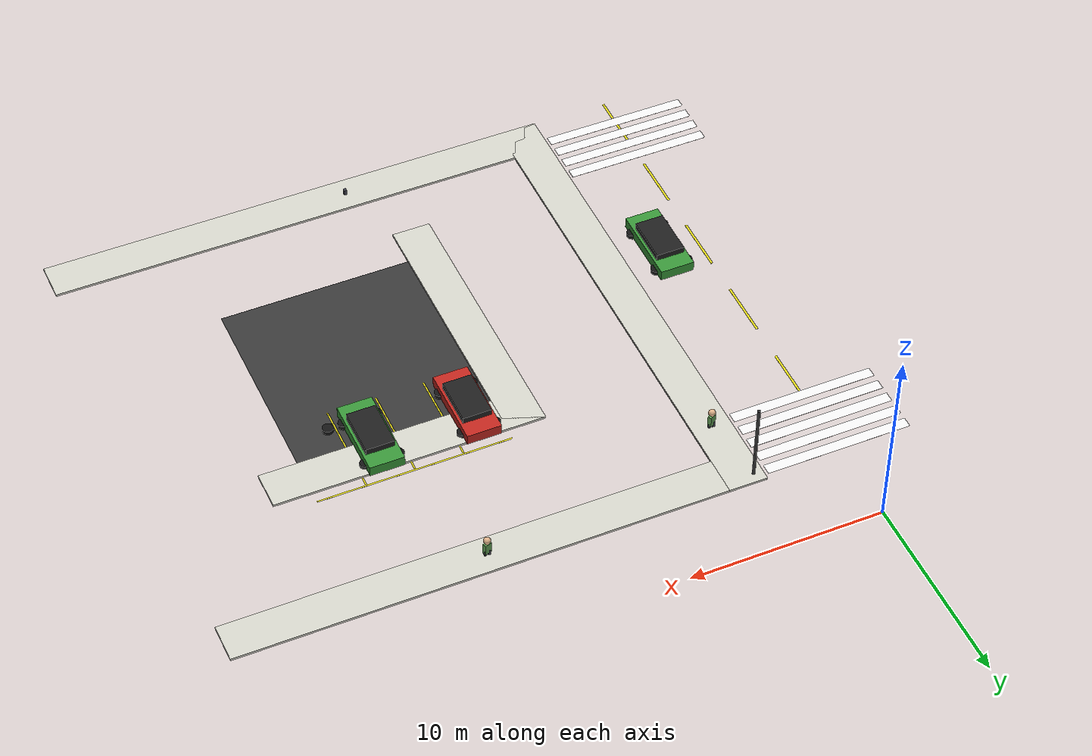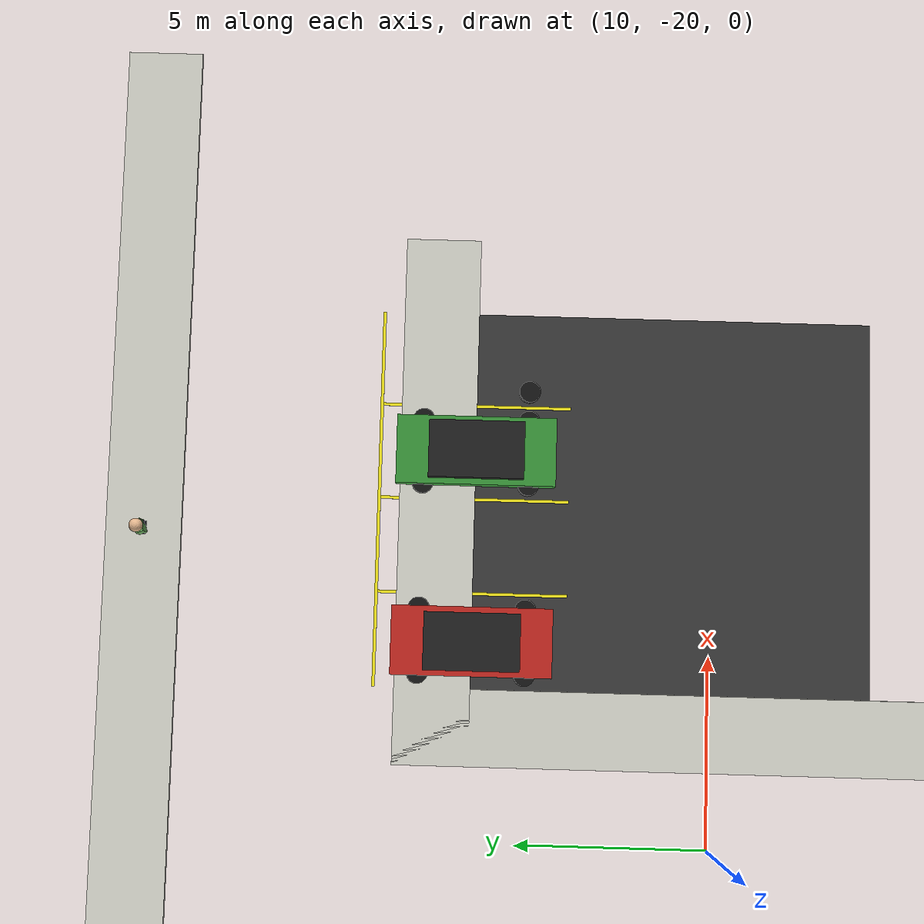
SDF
<sdf version="1.9">
 <world name="city">
  <model name="sw_v_21">
   <static>true</static>
   <pose>5.0 -17.5 0.065 0 0 0</pose>
   <link name="l">
    <collision name="c"><geometry><box><size>2.0 27.0 0.12</size></box></geometry></collision>
    <visual name="v">
     <geometry><box><size>2.0 27.0 0.12</size></box></geometry>
     <material>
      <ambient>0.82 0.82 0.78 1</ambient>
      <diffuse>0.82 0.82 0.78 1</diffuse>
      <specular>0.04 0.04 0.04 1</specular>
     </material>
    </visual>
   </link>
  </model>
  <model name="sw_h_38">
   <static>true</static>
   <pose>17.5 -30.0 0.065 0 0 0</pose>
   <link name="l">
    <collision name="c"><geometry><box><size>27.0 2.0 0.12</size></box></geometry></collision>
    <visual name="v">
     <geometry><box><size>27.0 2.0 0.12</size></box></geometry>
     <material>
      <ambient>0.82 0.82 0.78 1</ambient>
      <diffuse>0.82 0.82 0.78 1</diffuse>
      <specular>0.04 0.04 0.04 1</specular>
     </material>
    </visual>
   </link>
  </model>
  <model name="sw_h_42">
   <static>true</static>
   <pose>17.5 -5.0 0.065 0 0 0</pose>
   <link name="l">
    <collision name="c"><geometry><box><size>27.0 2.0 0.12</size></box></geometry></collision>
    <visual name="v">
     <geometry><box><size>27.0 2.0 0.12</size></box></geometry>
     <material>
      <ambient>0.82 0.82 0.78 1</ambient>
      <diffuse>0.82 0.82 0.78 1</diffuse>
      <specular>0.04 0.04 0.04 1</specular>
     </material>
    </visual>
   </link>
  </model>
  <model name="sw_corner_74">
   <static>true</static>
   <pose>5.0 -5.0 0.065 0 0 0</pose>
   <link name="l">
    <collision name="c"><geometry><box><size>2.0 2.0 0.12</size></box></geometry></collision>
    <visual name="v">
     <geometry><box><size>2.0 2.0 0.12</size></box></geometry>
     <material>
      <ambient>0.82 0.82 0.78 1</ambient>
      <diffuse>0.82 0.82 0.78 1</diffuse>
      <specular>0.04 0.04 0.04 1</specular>
     </material>
    </visual>
   </link>
  </model>
  <model name="cw_n_157">
   <static>true</static>
   <pose>0.0 -29.525 0.013000000000000001 0 0 0</pose>
   <link name="l">
    <visual name="v">
     <geometry><box><size>7.6 0.55 0.005</size></box></geometry>
     <material>
      <ambient>0.94 0.94 0.94 1</ambient>
      <diffuse>0.94 0.94 0.94 1</diffuse>
      <specular>0.04 0.04 0.04 1</specular>
     </material>
    </visual>
   </link>
  </model>
  <model name="cw_n_161">
   <static>true</static>
   <pose>0.0 -28.625 0.013000000000000001 0 0 0</pose>
   <link name="l">
    <visual name="v">
     <geometry><box><size>7.6 0.55 0.005</size></box></geometry>
     <material>
      <ambient>0.94 0.94 0.94 1</ambient>
      <diffuse>0.94 0.94 0.94 1</diffuse>
      <specular>0.04 0.04 0.04 1</specular>
     </material>
    </visual>
   </link>
  </model>
  <model name="cw_n_165">
   <static>true</static>
   <pose>0.0 -27.725 0.013000000000000001 0 0 0</pose>
   <link name="l">
    <visual name="v">
     <geometry><box><size>7.6 0.55 0.005</size></box></geometry>
     <material>
      <ambient>0.94 0.94 0.94 1</ambient>
      <diffuse>0.94 0.94 0.94 1</diffuse>
      <specular>0.04 0.04 0.04 1</specular>
     </material>
    </visual>
   </link>
  </model>
  <model name="cw_n_169">
   <static>true</static>
   <pose>0.0 -26.825 0.013000000000000001 0 0 0</pose>
   <link name="l">
    <visual name="v">
     <geometry><box><size>7.6 0.55 0.005</size></box></geometry>
     <material>
      <ambient>0.94 0.94 0.94 1</ambient>
      <diffuse>0.94 0.94 0.94 1</diffuse>
      <specular>0.04 0.04 0.04 1</specular>
     </material>
    </visual>
   </link>
  </model>
  <model name="cw_s_172">
   <static>true</static>
   <pose>0.0 -4.575 0.013000000000000001 0 0 0</pose>
   <link name="l">
    <visual name="v">
     <geometry><box><size>7.6 0.55 0.005</size></box></geometry>
     <material>
      <ambient>0.94 0.94 0.94 1</ambient>
      <diffuse>0.94 0.94 0.94 1</diffuse>
      <specular>0.04 0.04 0.04 1</specular>
     </material>
    </visual>
   </link>
  </model>
  <model name="cw_s_176">
   <static>true</static>
   <pose>0.0 -5.475 0.013000000000000001 0 0 0</pose>
   <link name="l">
    <visual name="v">
     <geometry><box><size>7.6 0.55 0.005</size></box></geometry>
     <material>
      <ambient>0.94 0.94 0.94 1</ambient>
      <diffuse>0.94 0.94 0.94 1</diffuse>
      <specular>0.04 0.04 0.04 1</specular>
     </material>
    </visual>
   </link>
  </model>
  <model name="cw_s_180">
   <static>true</static>
   <pose>0.0 -6.375 0.013000000000000001 0 0 0</pose>
   <link name="l">
    <visual name="v">
     <geometry><box><size>7.6 0.55 0.005</size></box></geometry>
     <material>
      <ambient>0.94 0.94 0.94 1</ambient>
      <diffuse>0.94 0.94 0.94 1</diffuse>
      <specular>0.04 0.04 0.04 1</specular>
     </material>
    </visual>
   </link>
  </model>
  <model name="cw_s_184">
   <static>true</static>
   <pose>0.0 -7.275 0.013000000000000001 0 0 0</pose>
   <link name="l">
    <visual name="v">
     <geometry><box><size>7.6 0.55 0.005</size></box></geometry>
     <material>
      <ambient>0.94 0.94 0.94 1</ambient>
      <diffuse>0.94 0.94 0.94 1</diffuse>
      <specular>0.04 0.04 0.04 1</specular>
     </material>
    </visual>
   </link>
  </model>
  <model name="cw_s_188">
   <static>true</static>
   <pose>0.0 -8.175 0.013000000000000001 0 0 0</pose>
   <link name="l">
    <visual name="v">
     <geometry><box><size>7.6 0.55 0.005</size></box></geometry>
     <material>
      <ambient>0.94 0.94 0.94 1</ambient>
      <diffuse>0.94 0.94 0.94 1</diffuse>
      <specular>0.04 0.04 0.04 1</specular>
     </material>
    </visual>
   </link>
  </model>
  <model name="dash_300">
   <static>true</static>
   <pose>0.0 -29.5 0.012 0 0 0</pose>
   <link name="l">
    <visual name="v">
     <geometry><box><size>0.12 3.0 0.003</size></box></geometry>
     <material>
      <ambient>0.95 0.9 0.1 1</ambient>
      <diffuse>0.95 0.9 0.1 1</diffuse>
      <specular>0.04 0.04 0.04 1</specular>
     </material>
    </visual>
   </link>
  </model>
  <model name="dash_301">
   <static>true</static>
   <pose>0.0 -24.5 0.012 0 0 0</pose>
   <link name="l">
    <visual name="v">
     <geometry><box><size>0.12 3.0 0.003</size></box></geometry>
     <material>
      <ambient>0.95 0.9 0.1 1</ambient>
      <diffuse>0.95 0.9 0.1 1</diffuse>
      <specular>0.04 0.04 0.04 1</specular>
     </material>
    </visual>
   </link>
  </model>
  <model name="dash_302">
   <static>true</static>
   <pose>0.0 -19.5 0.012 0 0 0</pose>
   <link name="l">
    <visual name="v">
     <geometry><box><size>0.12 3.0 0.003</size></box></geometry>
     <material>
      <ambient>0.95 0.9 0.1 1</ambient>
      <diffuse>0.95 0.9 0.1 1</diffuse>
      <specular>0.04 0.04 0.04 1</specular>
     </material>
    </visual>
   </link>
  </model>
  <model name="dash_303">
   <static>true</static>
   <pose>0.0 -14.5 0.012 0 0 0</pose>
   <link name="l">
    <visual name="v">
     <geometry><box><size>0.12 3.0 0.003</size></box></geometry>
     <material>
      <ambient>0.95 0.9 0.1 1</ambient>
      <diffuse>0.95 0.9 0.1 1</diffuse>
      <specular>0.04 0.04 0.04 1</specular>
     </material>
    </visual>
   </link>
  </model>
  <model name="dash_304">
   <static>true</static>
   <pose>0.0 -9.5 0.012 0 0 0</pose>
   <link name="l">
    <visual name="v">
     <geometry><box><size>0.12 3.0 0.003</size></box></geometry>
     <material>
      <ambient>0.95 0.9 0.1 1</ambient>
      <diffuse>0.95 0.9 0.1 1</diffuse>
      <specular>0.04 0.04 0.04 1</specular>
     </material>
    </visual>
   </link>
  </model>
  <model name="lot2_slab_431">
   <static>true</static>
   <pose>19.0 -19.0 0.008 0 0 0</pose>
   <link name="l">
    <collision name="c"><geometry><box><size>10.0 10.5 0.005</size></box></geometry></collision>
    <visual name="v">
     <geometry><box><size>10.0 10.5 0.005</size></box></geometry>
     <material>
      <ambient>0.22 0.22 0.22 1</ambient>
      <diffuse>0.22 0.22 0.22 1</diffuse>
      <specular>0.04 0.04 0.04 1</specular>
     </material>
    </visual>
   </link>
  </model>
  <model name="lot2_ln_432">
   <static>true</static>
   <pose>16.5 -13.75 0.012 0 0 0</pose>
   <link name="l">
    <visual name="v">
     <geometry><box><size>0.08 5.0 0.003</size></box></geometry>
     <material>
      <ambient>0.95 0.9 0.1 1</ambient>
      <diffuse>0.95 0.9 0.1 1</diffuse>
      <specular>0.04 0.04 0.04 1</specular>
     </material>
    </visual>
   </link>
  </model>
  <model name="lot2_ln_433">
   <static>true</static>
   <pose>19.0 -13.75 0.012 0 0 0</pose>
   <link name="l">
    <visual name="v">
     <geometry><box><size>0.08 5.0 0.003</size></box></geometry>
     <material>
      <ambient>0.95 0.9 0.1 1</ambient>
      <diffuse>0.95 0.9 0.1 1</diffuse>
      <specular>0.04 0.04 0.04 1</specular>
     </material>
    </visual>
   </link>
  </model>
  <model name="lot2_ln_434">
   <static>true</static>
   <pose>21.5 -13.75 0.012 0 0 0</pose>
   <link name="l">
    <visual name="v">
     <geometry><box><size>0.08 5.0 0.003</size></box></geometry>
     <material>
      <ambient>0.95 0.9 0.1 1</ambient>
      <diffuse>0.95 0.9 0.1 1</diffuse>
      <specular>0.04 0.04 0.04 1</specular>
     </material>
    </visual>
   </link>
  </model>
  <model name="lot2_back_435">
   <static>true</static>
   <pose>19.0 -11.21 0.012 0 0 0</pose>
   <link name="l">
    <visual name="v">
     <geometry><box><size>10.0 0.08 0.003</size></box></geometry>
     <material>
      <ambient>0.95 0.9 0.1 1</ambient>
      <diffuse>0.95 0.9 0.1 1</diffuse>
      <specular>0.04 0.04 0.04 1</specular>
     </material>
    </visual>
   </link>
  </model>
  <model name="lot2_car0_b_436">
   <static>true</static>
   <pose>15.25 -13.75 0.358 0 0 0</pose>
   <link name="l">
    <collision name="c"><geometry><box><size>1.8 4.2 0.55</size></box></geometry></collision>
    <visual name="v">
     <geometry><box><size>1.8 4.2 0.55</size></box></geometry>
     <material>
      <ambient>0.75 0.15 0.12 1</ambient>
      <diffuse>0.75 0.15 0.12 1</diffuse>
      <specular>0.04 0.04 0.04 1</specular>
     </material>
    </visual>
   </link>
  </model>
  <model name="lot2_car0_r_437">
   <static>true</static>
   <pose>15.25 -13.75 0.778 0 0 0</pose>
   <link name="l">
    <collision name="c"><geometry><box><size>1.5 2.5 0.38</size></box></geometry></collision>
    <visual name="v">
     <geometry><box><size>1.5 2.5 0.38</size></box></geometry>
     <material>
      <ambient>0.12 0.12 0.12 1</ambient>
      <diffuse>0.12 0.12 0.12 1</diffuse>
      <specular>0.04 0.04 0.04 1</specular>
     </material>
    </visual>
   </link>
  </model>
  <model name="lot2_car0_w_438">
   <static>true</static>
   <pose>14.4 -15.15 0.158 0 0 1.5708</pose>
   <link name="l">
    <visual name="v">
     <geometry><cylinder><radius>0.28</radius><length>0.22</length></cylinder></geometry>
     <material><ambient>0.08 0.08 0.08 1</ambient><diffuse>0.08 0.08 0.08 1</diffuse></material>
    </visual>
   </link>
  </model>
  <model name="lot2_car0_w_439">
   <static>true</static>
   <pose>16.1 -15.15 0.158 0 0 1.5708</pose>
   <link name="l">
    <visual name="v">
     <geometry><cylinder><radius>0.28</radius><length>0.22</length></cylinder></geometry>
     <material><ambient>0.08 0.08 0.08 1</ambient><diffuse>0.08 0.08 0.08 1</diffuse></material>
    </visual>
   </link>
  </model>
  <model name="lot2_car0_w_440">
   <static>true</static>
   <pose>14.4 -12.35 0.158 0 0 1.5708</pose>
   <link name="l">
    <visual name="v">
     <geometry><cylinder><radius>0.28</radius><length>0.22</length></cylinder></geometry>
     <material><ambient>0.08 0.08 0.08 1</ambient><diffuse>0.08 0.08 0.08 1</diffuse></material>
    </visual>
   </link>
  </model>
  <model name="lot2_car0_w_441">
   <static>true</static>
   <pose>16.1 -12.35 0.158 0 0 1.5708</pose>
   <link name="l">
    <visual name="v">
     <geometry><cylinder><radius>0.28</radius><length>0.22</length></cylinder></geometry>
     <material><ambient>0.08 0.08 0.08 1</ambient><diffuse>0.08 0.08 0.08 1</diffuse></material>
    </visual>
   </link>
  </model>
  <model name="lot2_car2_b_442">
   <static>true</static>
   <pose>20.25 -13.75 0.358 0 0 0</pose>
   <link name="l">
    <collision name="c"><geometry><box><size>1.8 4.2 0.55</size></box></geometry></collision>
    <visual name="v">
     <geometry><box><size>1.8 4.2 0.55</size></box></geometry>
     <material>
      <ambient>0.22 0.58 0.22 1</ambient>
      <diffuse>0.22 0.58 0.22 1</diffuse>
      <specular>0.04 0.04 0.04 1</specular>
     </material>
    </visual>
   </link>
  </model>
  <model name="lot2_car2_r_443">
   <static>true</static>
   <pose>20.25 -13.75 0.778 0 0 0</pose>
   <link name="l">
    <collision name="c"><geometry><box><size>1.5 2.5 0.38</size></box></geometry></collision>
    <visual name="v">
     <geometry><box><size>1.5 2.5 0.38</size></box></geometry>
     <material>
      <ambient>0.12 0.12 0.12 1</ambient>
      <diffuse>0.12 0.12 0.12 1</diffuse>
      <specular>0.04 0.04 0.04 1</specular>
     </material>
    </visual>
   </link>
  </model>
  <model name="lot2_car2_w_444">
   <static>true</static>
   <pose>19.4 -15.15 0.158 0 0 1.5708</pose>
   <link name="l">
    <visual name="v">
     <geometry><cylinder><radius>0.28</radius><length>0.22</length></cylinder></geometry>
     <material><ambient>0.08 0.08 0.08 1</ambient><diffuse>0.08 0.08 0.08 1</diffuse></material>
    </visual>
   </link>
  </model>
  <model name="lot2_car2_w_445">
   <static>true</static>
   <pose>21.1 -15.15 0.158 0 0 1.5708</pose>
   <link name="l">
    <visual name="v">
     <geometry><cylinder><radius>0.28</radius><length>0.22</length></cylinder></geometry>
     <material><ambient>0.08 0.08 0.08 1</ambient><diffuse>0.08 0.08 0.08 1</diffuse></material>
    </visual>
   </link>
  </model>
  <model name="lot2_car2_w_446">
   <static>true</static>
   <pose>19.4 -12.35 0.158 0 0 1.5708</pose>
   <link name="l">
    <visual name="v">
     <geometry><cylinder><radius>0.28</radius><length>0.22</length></cylinder></geometry>
     <material><ambient>0.08 0.08 0.08 1</ambient><diffuse>0.08 0.08 0.08 1</diffuse></material>
    </visual>
   </link>
  </model>
  <model name="lot2_car2_w_447">
   <static>true</static>
   <pose>21.1 -12.35 0.158 0 0 1.5708</pose>
   <link name="l">
    <visual name="v">
     <geometry><cylinder><radius>0.28</radius><length>0.22</length></cylinder></geometry>
     <material><ambient>0.08 0.08 0.08 1</ambient><diffuse>0.08 0.08 0.08 1</diffuse></material>
    </visual>
   </link>
  </model>
  <model name="lot2_car3_w_450">
   <static>true</static>
   <pose>21.9 -15.15 0.158 0 0 1.5708</pose>
   <link name="l">
    <visual name="v">
     <geometry><cylinder><radius>0.28</radius><length>0.22</length></cylinder></geometry>
     <material><ambient>0.08 0.08 0.08 1</ambient><diffuse>0.08 0.08 0.08 1</diffuse></material>
    </visual>
   </link>
  </model>
  <model name="lot2_swl_454">
   <static>true</static>
   <pose>13.0 -19.0 0.065 0 0 0</pose>
   <link name="l">
    <collision name="c"><geometry><box><size>2.0 14.5 0.12</size></box></geometry></collision>
    <visual name="v">
     <geometry><box><size>2.0 14.5 0.12</size></box></geometry>
     <material>
      <ambient>0.82 0.82 0.78 1</ambient>
      <diffuse>0.82 0.82 0.78 1</diffuse>
      <specular>0.04 0.04 0.04 1</specular>
     </material>
    </visual>
   </link>
  </model>
  <model name="lot2_swf_456">
   <static>true</static>
   <pose>19.0 -12.75 0.065 0 0 0</pose>
   <link name="l">
    <collision name="c"><geometry><box><size>14.0 2.0 0.12</size></box></geometry></collision>
    <visual name="v">
     <geometry><box><size>14.0 2.0 0.12</size></box></geometry>
     <material>
      <ambient>0.82 0.82 0.78 1</ambient>
      <diffuse>0.82 0.82 0.78 1</diffuse>
      <specular>0.04 0.04 0.04 1</specular>
     </material>
    </visual>
   </link>
  </model>
  <model name="rcar2_b_522">
   <static>true</static>
   <pose>2.0 -20 0.358 0 0 0</pose>
   <link name="l">
    <collision name="c"><geometry><box><size>1.8 4.2 0.55</size></box></geometry></collision>
    <visual name="v">
     <geometry><box><size>1.8 4.2 0.55</size></box></geometry>
     <material>
      <ambient>0.22 0.58 0.22 1</ambient>
      <diffuse>0.22 0.58 0.22 1</diffuse>
      <specular>0.04 0.04 0.04 1</specular>
     </material>
    </visual>
   </link>
  </model>
  <model name="rcar2_r_523">
   <static>true</static>
   <pose>2.0 -20 0.778 0 0 0</pose>
   <link name="l">
    <collision name="c"><geometry><box><size>1.5 2.5 0.38</size></box></geometry></collision>
    <visual name="v">
     <geometry><box><size>1.5 2.5 0.38</size></box></geometry>
     <material>
      <ambient>0.12 0.12 0.12 1</ambient>
      <diffuse>0.12 0.12 0.12 1</diffuse>
      <specular>0.04 0.04 0.04 1</specular>
     </material>
    </visual>
   </link>
  </model>
  <model name="rcar2_w_524">
   <static>true</static>
   <pose>1.15 -21.4 0.158 0 0 1.5708</pose>
   <link name="l">
    <visual name="v">
     <geometry><cylinder><radius>0.28</radius><length>0.22</length></cylinder></geometry>
     <material><ambient>0.08 0.08 0.08 1</ambient><diffuse>0.08 0.08 0.08 1</diffuse></material>
    </visual>
   </link>
  </model>
  <model name="rcar2_w_525">
   <static>true</static>
   <pose>2.85 -21.4 0.158 0 0 1.5708</pose>
   <link name="l">
    <visual name="v">
     <geometry><cylinder><radius>0.28</radius><length>0.22</length></cylinder></geometry>
     <material><ambient>0.08 0.08 0.08 1</ambient><diffuse>0.08 0.08 0.08 1</diffuse></material>
    </visual>
   </link>
  </model>
  <model name="rcar2_w_526">
   <static>true</static>
   <pose>1.15 -18.6 0.158 0 0 1.5708</pose>
   <link name="l">
    <visual name="v">
     <geometry><cylinder><radius>0.28</radius><length>0.22</length></cylinder></geometry>
     <material><ambient>0.08 0.08 0.08 1</ambient><diffuse>0.08 0.08 0.08 1</diffuse></material>
    </visual>
   </link>
  </model>
  <model name="rcar2_w_527">
   <static>true</static>
   <pose>2.85 -18.6 0.158 0 0 1.5708</pose>
   <link name="l">
    <visual name="v">
     <geometry><cylinder><radius>0.28</radius><length>0.22</length></cylinder></geometry>
     <material><ambient>0.08 0.08 0.08 1</ambient><diffuse>0.08 0.08 0.08 1</diffuse></material>
    </visual>
   </link>
  </model>
  <model name="ped10_t_610">
   <static>true</static>
   <pose>5.0 -8 0.575 0 0 0.4399999999999995</pose>
   <link name="l">
    <collision name="c"><geometry><box><size>0.35 0.2 0.6</size></box></geometry></collision>
    <visual name="v">
     <geometry><box><size>0.35 0.2 0.6</size></box></geometry>
     <material>
      <ambient>0.4 0.65 0.35 1</ambient>
      <diffuse>0.4 0.65 0.35 1</diffuse>
      <specular>0.04 0.04 0.04 1</specular>
     </material>
    </visual>
   </link>
  </model>
  <model name="ped10_h_611">
   <static>true</static>
   <pose>5.0 -8 1.075 0 0 0</pose>
   <link name="l">
    <visual name="v">
     <geometry><sphere><radius>0.18</radius></sphere></geometry>
     <material><ambient>0.9 0.72 0.56 1</ambient><diffuse>0.9 0.72 0.56 1</diffuse></material>
    </visual>
   </link>
  </model>
  <model name="ped10_l-0.1_612">
   <static>true</static>
   <pose>4.9 -8 0.275 0 0 0</pose>
   <link name="l">
    <collision name="c"><geometry><box><size>0.14 0.16 0.3</size></box></geometry></collision>
    <visual name="v">
     <geometry><box><size>0.14 0.16 0.3</size></box></geometry>
     <material>
      <ambient>0.25 0.25 0.3 1</ambient>
      <diffuse>0.25 0.25 0.3 1</diffuse>
      <specular>0.04 0.04 0.04 1</specular>
     </material>
    </visual>
   </link>
  </model>
  <model name="ped10_l0.1_613">
   <static>true</static>
   <pose>5.1 -8 0.275 0 0 0</pose>
   <link name="l">
    <collision name="c"><geometry><box><size>0.14 0.16 0.3</size></box></geometry></collision>
    <visual name="v">
     <geometry><box><size>0.14 0.16 0.3</size></box></geometry>
     <material>
      <ambient>0.25 0.25 0.3 1</ambient>
      <diffuse>0.25 0.25 0.3 1</diffuse>
      <specular>0.04 0.04 0.04 1</specular>
     </material>
    </visual>
   </link>
  </model>
  <model name="ped20_l0.1_653">
   <static>true</static>
   <pose>15.1 -30.0 0.275 0 0 0</pose>
   <link name="l">
    <collision name="c"><geometry><box><size>0.14 0.16 0.3</size></box></geometry></collision>
    <visual name="v">
     <geometry><box><size>0.14 0.16 0.3</size></box></geometry>
     <material>
      <ambient>0.25 0.25 0.3 1</ambient>
      <diffuse>0.25 0.25 0.3 1</diffuse>
      <specular>0.04 0.04 0.04 1</specular>
     </material>
    </visual>
   </link>
  </model>
  <model name="ped22_t_658">
   <static>true</static>
   <pose>18 -5.0 0.575 0 0 3.4800000000000004</pose>
   <link name="l">
    <collision name="c"><geometry><box><size>0.35 0.2 0.6</size></box></geometry></collision>
    <visual name="v">
     <geometry><box><size>0.35 0.2 0.6</size></box></geometry>
     <material>
      <ambient>0.4 0.65 0.35 1</ambient>
      <diffuse>0.4 0.65 0.35 1</diffuse>
      <specular>0.04 0.04 0.04 1</specular>
     </material>
    </visual>
   </link>
  </model>
  <model name="ped22_h_659">
   <static>true</static>
   <pose>18 -5.0 1.075 0 0 0</pose>
   <link name="l">
    <visual name="v">
     <geometry><sphere><radius>0.18</radius></sphere></geometry>
     <material><ambient>0.9 0.72 0.56 1</ambient><diffuse>0.9 0.72 0.56 1</diffuse></material>
    </visual>
   </link>
  </model>
  <model name="ped22_l-0.1_660">
   <static>true</static>
   <pose>17.9 -5.0 0.275 0 0 0</pose>
   <link name="l">
    <collision name="c"><geometry><box><size>0.14 0.16 0.3</size></box></geometry></collision>
    <visual name="v">
     <geometry><box><size>0.14 0.16 0.3</size></box></geometry>
     <material>
      <ambient>0.25 0.25 0.3 1</ambient>
      <diffuse>0.25 0.25 0.3 1</diffuse>
      <specular>0.04 0.04 0.04 1</specular>
     </material>
    </visual>
   </link>
  </model>
  <model name="ped22_l0.1_661">
   <static>true</static>
   <pose>18.1 -5.0 0.275 0 0 0</pose>
   <link name="l">
    <collision name="c"><geometry><box><size>0.14 0.16 0.3</size></box></geometry></collision>
    <visual name="v">
     <geometry><box><size>0.14 0.16 0.3</size></box></geometry>
     <material>
      <ambient>0.25 0.25 0.3 1</ambient>
      <diffuse>0.25 0.25 0.3 1</diffuse>
      <specular>0.04 0.04 0.04 1</specular>
     </material>
    </visual>
   </link>
  </model>
  <model name="tl_0_0_1_pole_792">
   <static>true</static>
   <pose>4.5 -4.5 2.255 0 0 0</pose>
   <link name="l">
    <collision name="c">
     <geometry><cylinder><radius>0.08</radius><length>4.5</length></cylinder></geometry>
    </collision>
    <visual name="v">
     <geometry><cylinder><radius>0.08</radius><length>4.5</length></cylinder></geometry>
     <material><ambient>0.2 0.2 0.2 1</ambient><diffuse>0.2 0.2 0.2 1</diffuse></material>
    </visual>
   </link>
  </model>
 </world>
</sdf>
